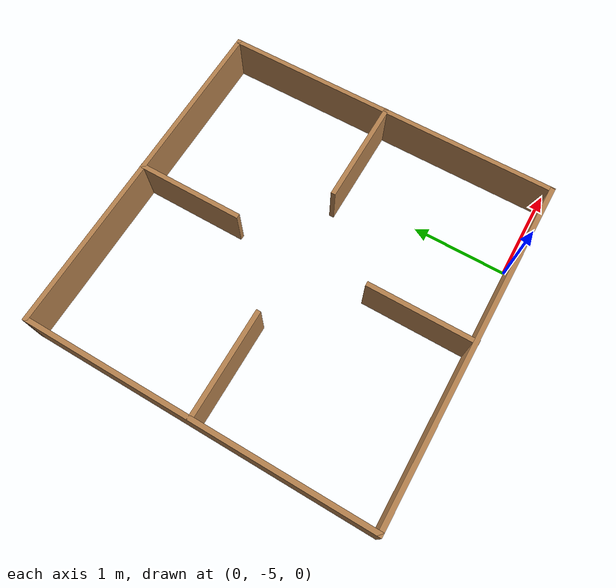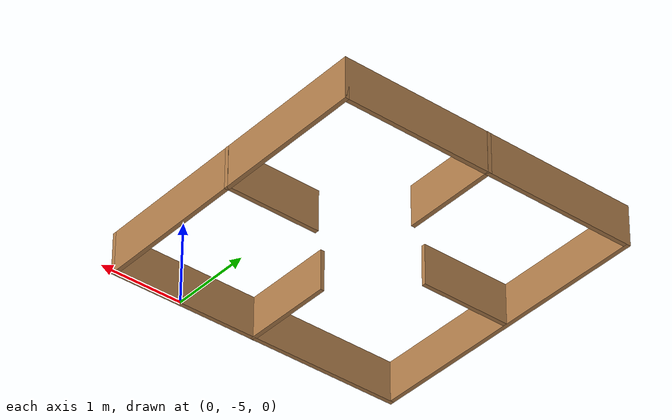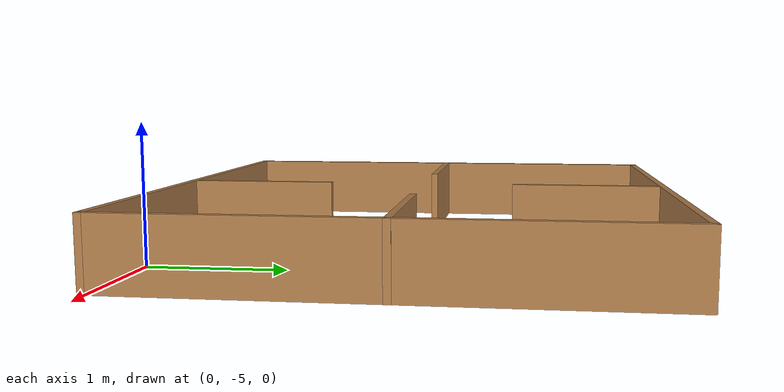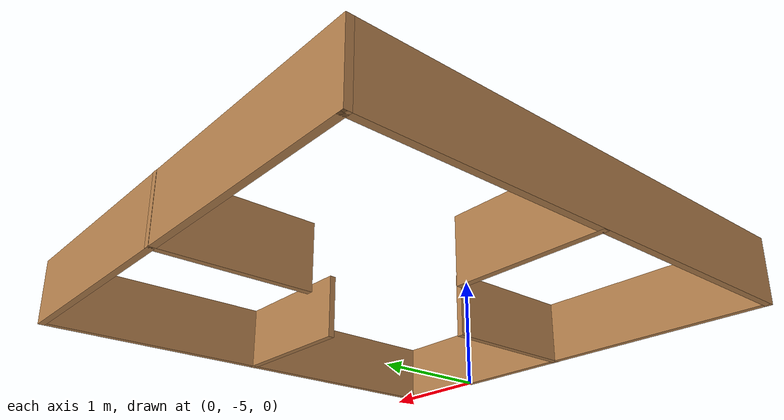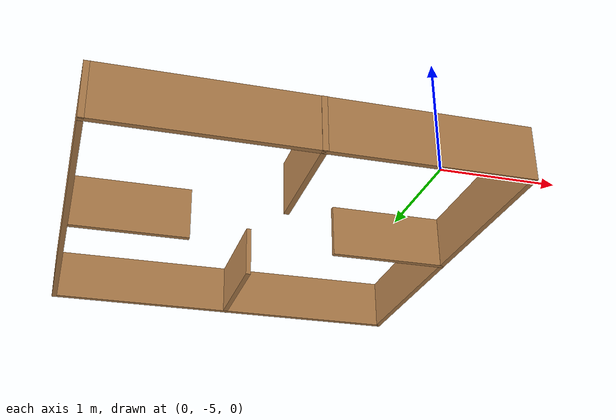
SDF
<?xml version='1.0'?>
<sdf version='1.6'>
  <model name='2024world'>
    <pose frame=''>-1.009 -3.20456 0 0 -0 0</pose>
    <link name='Wall_13'>
      <collision name='Wall_13_Collision'>
        <geometry>
          <box>
            <size>3.7 0.05 0.5</size>
          </box>
        </geometry>
        <pose frame=''>0 0 0.25 0 -0 0</pose>
      </collision>
      <visual name='Wall_13_Visual'>
        <pose frame=''>0 0 0.25 0 -0 0</pose>
        <geometry>
          <box>
            <size>3.7 0.05 0.5</size>
          </box>
        </geometry>
        <material>
          <script>
            <uri>file://media/materials/scripts/gazebo.material</uri>
            <name>Gazebo/Wood</name>
          </script>
          <ambient>1 1 1 1</ambient>
        </material>
        <meta>
          <layer>0</layer>
        </meta>
      </visual>
      <pose frame=''>1.824 0.000555 0 0 -0 -1.5708</pose>
    </link>
    <link name='Wall_15'>
      <collision name='Wall_15_Collision'>
        <geometry>
          <box>
            <size>3.7 0.05 0.5</size>
          </box>
        </geometry>
        <pose frame=''>0 0 0.25 0 -0 0</pose>
      </collision>
      <visual name='Wall_15_Visual'>
        <pose frame=''>0 0 0.25 0 -0 0</pose>
        <geometry>
          <box>
            <size>3.7 0.05 0.5</size>
          </box>
        </geometry>
        <material>
          <script>
            <uri>file://media/materials/scripts/gazebo.material</uri>
            <name>Gazebo/Wood</name>
          </script>
          <ambient>1 1 1 1</ambient>
        </material>
        <meta>
          <layer>0</layer>
        </meta>
      </visual>
      <pose frame=''>-0.001 -1.82444 0 0 -0 3.14159</pose>
    </link>
    <link name='Wall_19'>
      <collision name='Wall_19_Collision'>
        <geometry>
          <box>
            <size>3.7 0.05 0.5</size>
          </box>
        </geometry>
        <pose frame=''>0 0 0.25 0 -0 0</pose>
      </collision>
      <visual name='Wall_19_Visual'>
        <pose frame=''>0 0 0.25 0 -0 0</pose>
        <geometry>
          <box>
            <size>3.7 0.05 0.5</size>
          </box>
        </geometry>
        <material>
          <script>
            <uri>file://media/materials/scripts/gazebo.material</uri>
            <name>Gazebo/Wood</name>
          </script>
          <ambient>1 1 1 1</ambient>
        </material>
        <meta>
          <layer>0</layer>
        </meta>
      </visual>
      <pose frame=''>-1.826 0.000555 0 0 -0 -1.5708</pose>
    </link>
    <link name='Wall_21'>
      <collision name='Wall_21_Collision'>
        <geometry>
          <box>
            <size>1.15 0.05 0.5</size>
          </box>
        </geometry>
        <pose frame=''>0 0 0.25 0 -0 0</pose>
      </collision>
      <visual name='Wall_21_Visual'>
        <pose frame=''>0 0 0.25 0 -0 0</pose>
        <geometry>
          <box>
            <size>1.15 0.05 0.5</size>
          </box>
        </geometry>
        <material>
          <script>
            <uri>file://media/materials/scripts/gazebo.material</uri>
            <name>Gazebo/Wood</name>
          </script>
          <ambient>1 1 1 1</ambient>
        </material>
        <meta>
          <layer>0</layer>
        </meta>
      </visual>
      <pose frame=''>-1.27 0.02634 0 0 -0 0</pose>
    </link>
    <link name='Wall_23'>
      <collision name='Wall_23_Collision'>
        <geometry>
          <box>
            <size>1.15 0.05 0.5</size>
          </box>
        </geometry>
        <pose frame=''>0 0 0.25 0 -0 0</pose>
      </collision>
      <visual name='Wall_23_Visual'>
        <pose frame=''>0 0 0.25 0 -0 0</pose>
        <geometry>
          <box>
            <size>1.15 0.05 0.5</size>
          </box>
        </geometry>
        <material>
          <script>
            <uri>file://media/materials/scripts/gazebo.material</uri>
            <name>Gazebo/Wood</name>
          </script>
          <ambient>1 1 1 1</ambient>
        </material>
        <meta>
          <layer>0</layer>
        </meta>
      </visual>
      <pose frame=''>1.276 0.02685 0 0 -0 3.14159</pose>
    </link>
    <link name='Wall_25'>
      <collision name='Wall_25_Collision'>
        <geometry>
          <box>
            <size>1.1499 0.05 0.5</size>
          </box>
        </geometry>
        <pose frame=''>0 0 0.25 0 -0 0</pose>
      </collision>
      <visual name='Wall_25_Visual'>
        <pose frame=''>0 0 0.25 0 -0 0</pose>
        <geometry>
          <box>
            <size>1.1499 0.05 0.5</size>
          </box>
        </geometry>
        <material>
          <script>
            <uri>file://media/materials/scripts/gazebo.material</uri>
            <name>Gazebo/Wood</name>
          </script>
          <ambient>1 1 1 1</ambient>
        </material>
        <meta>
          <layer>0</layer>
        </meta>
      </visual>
      <pose frame=''>0.034 -1.27744 0 0 -0 1.5708</pose>
    </link>
    <link name='Wall_27'>
      <collision name='Wall_27_Collision'>
        <geometry>
          <box>
            <size>1.14968 0.05 0.5</size>
          </box>
        </geometry>
        <pose frame=''>0 0 0.25 0 -0 0</pose>
      </collision>
      <visual name='Wall_27_Visual'>
        <pose frame=''>0 0 0.25 0 -0 0</pose>
        <geometry>
          <box>
            <size>1.14968 0.05 0.5</size>
          </box>
        </geometry>
        <material>
          <script>
            <uri>file://media/materials/scripts/gazebo.material</uri>
            <name>Gazebo/Wood</name>
          </script>
          <ambient>1 1 1 1</ambient>
        </material>
        <meta>
          <layer>0</layer>
        </meta>
      </visual>
      <pose frame=''>0.025 1.27755 0 0 -0 -1.5708</pose>
    </link>
    <link name='Wall_5'>
      <collision name='Wall_5_Collision'>
        <geometry>
          <box>
            <size>3.7 0.05 0.5</size>
          </box>
        </geometry>
        <pose frame=''>0 0 0.25 0 -0 0</pose>
      </collision>
      <visual name='Wall_5_Visual'>
        <pose frame=''>0 0 0.25 0 -0 0</pose>
        <geometry>
          <box>
            <size>3.7 0.05 0.5</size>
          </box>
        </geometry>
        <material>
          <script>
            <uri>file://media/materials/scripts/gazebo.material</uri>
            <name>Gazebo/Wood</name>
          </script>
          <ambient>1 1 1 1</ambient>
        </material>
        <meta>
          <layer>0</layer>
        </meta>
      </visual>
      <pose frame=''>-0.001 1.82556 0 0 -0 3.14159</pose>
    </link>
    <static>1</static>
  </model>
</sdf>
